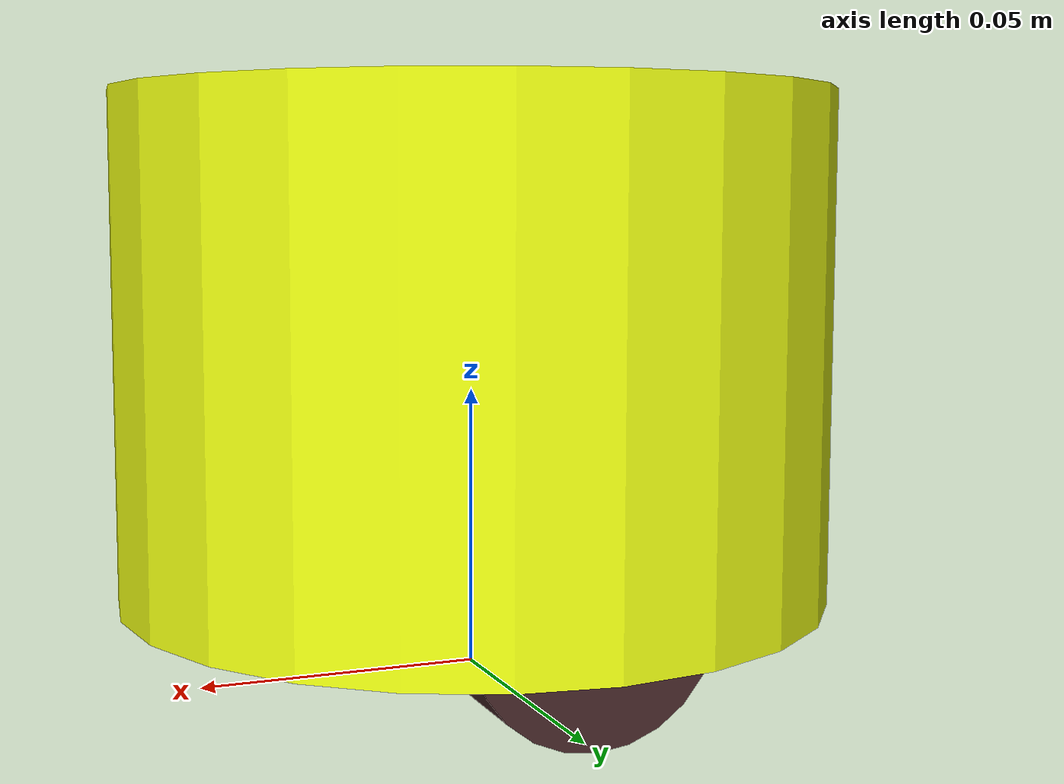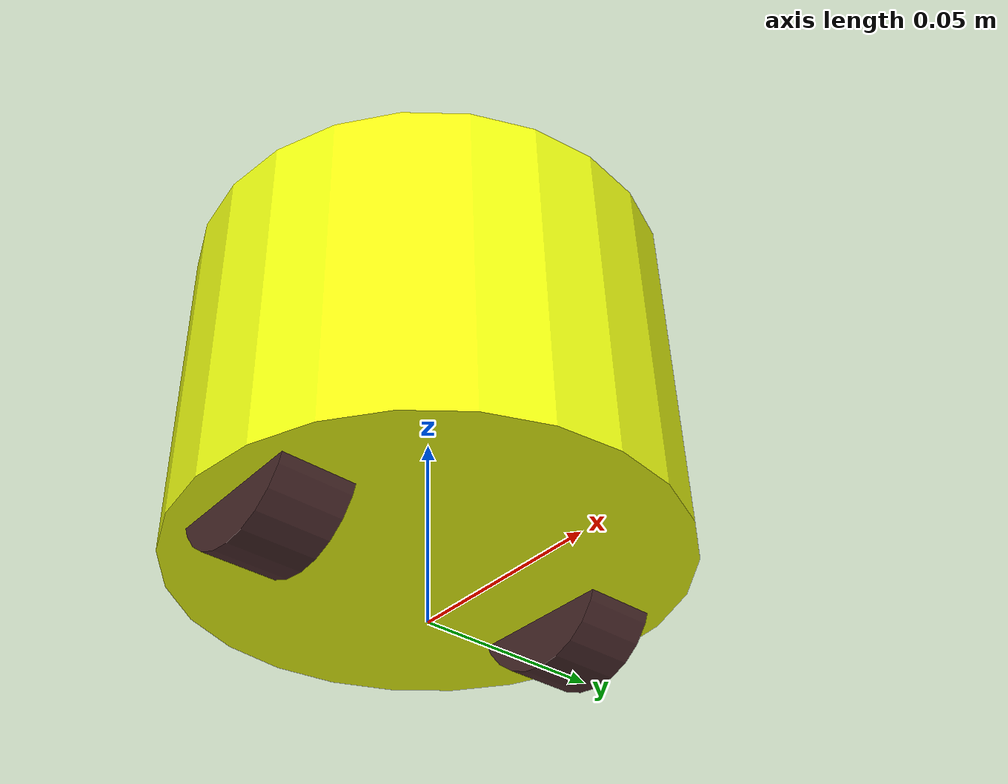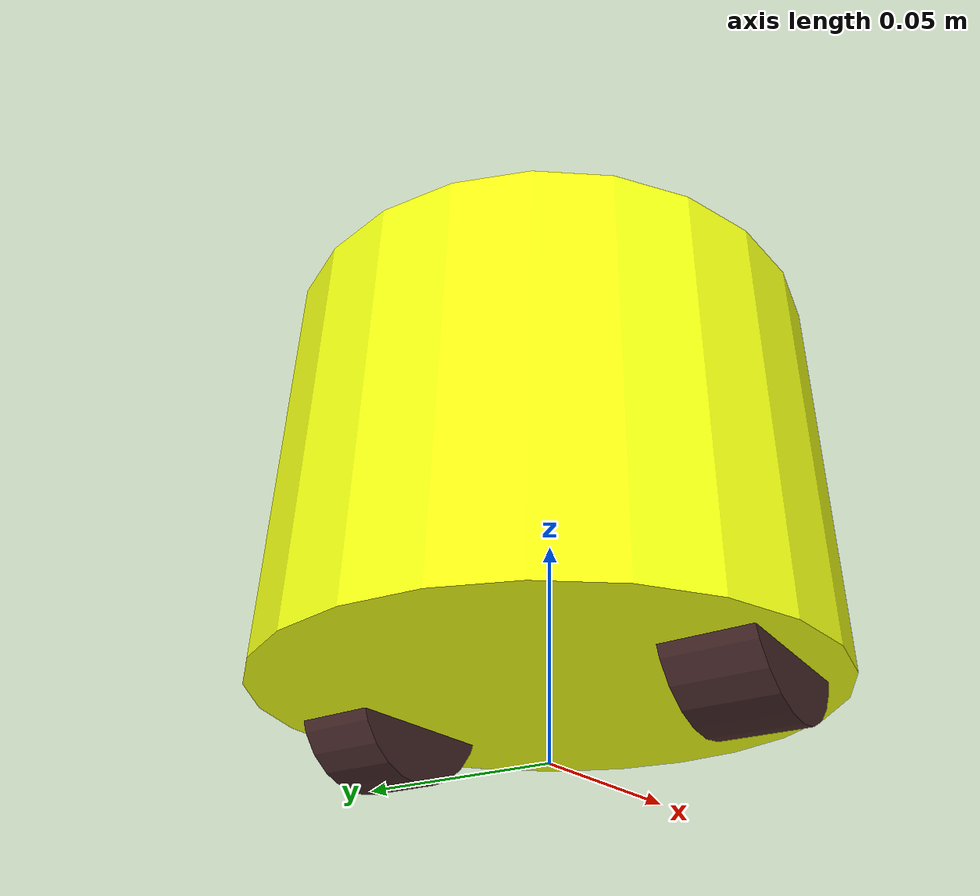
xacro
<?xml version="1.0"?>
<robot xmlns:xacro="http://ros.org/wiki/xacro" name="minibot">
  <link name="base_link">
    <visual>
      <geometry>
        <cylinder length="0.09" radius="0.0635" />
      </geometry>
      <origin xyz="0 0 0.058"/>
      <material name="chassis">
        <color rgba="0.933 1 0.0706 1"/>
      </material>
    </visual>
  </link>

  <joint name="base_to_wheel_left" type="fixed">
    <parent link="base_link"/>
    <child link="wheel_left"/>
    <origin xyz="0 0.045 0.021"/>
  </joint>

  <link name="wheel_left">
    <visual>
      <geometry>
        <cylinder length="0.019" radius="0.021" />
      </geometry>
      <origin rpy="1.57 0 0"/>
      <material name="wheel">
        <color rgba="0.267 0.149 0.1529 1"/>
      </material>
    </visual>
  </link>

  <joint name="base_to_wheel_right" type="fixed">
    <parent link="base_link"/>
    <child link="wheel_right"/>
    <origin xyz="0 -0.045 0.021"/>
  </joint>

  <link name="wheel_right">
    <visual>
      <geometry>
        <cylinder length="0.019" radius="0.021" />
      </geometry>
      <origin rpy="1.57 0 0"/>
      <material name="wheel">
        <color rgba="0.267 0.149 0.1529 1"/>
      </material>
    </visual>
  </link>
</robot>
